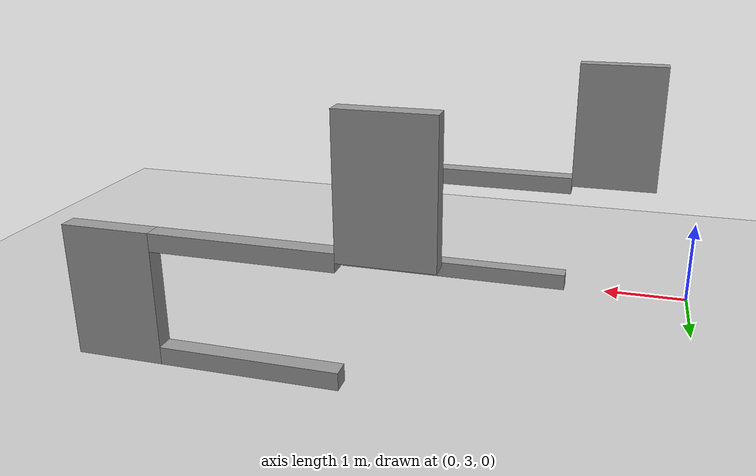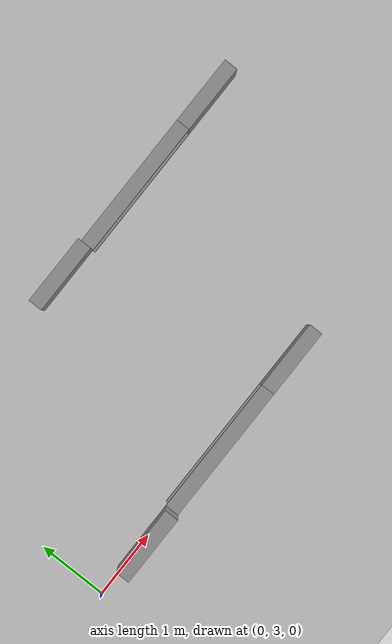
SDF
<sdf version="1.6">
 <world name="default">
  <light name="sun" type="directional">
   <pose>0 0 10 0 -0 0</pose>
   <diffuse>0.8 0.8 0.8 1</diffuse>
   <specular>0.1 0.1 0.1 1</specular>
   <attenuation>
    <range>1000</range>
    <constant>0.9</constant>
    <linear>0.01</linear>
    <quadratic>0.001</quadratic>
   </attenuation>
   <direction>-0.5 0.5 -1</direction>
  </light>
  <model name="ground_plane">
   <static>1</static>
   <link name="link">
    <collision name="collision">
     <geometry><plane><normal>0 0 1</normal><size>100 100</size></plane></geometry>
     <surface><friction><ode><mu>100</mu><mu2>50</mu2></ode></friction></surface>
    </collision>
    <visual name="visual">
     <cast_shadows>0</cast_shadows>
     <geometry><plane><normal>0 0 1</normal><size>100 100</size></plane></geometry>
     <material>
      <script><uri>file://media/materials/scripts/gazebo.material</uri><name>Gazebo/Grey</name></script>
     </material>
    </visual>
   </link>
  </model>
  <gravity>0 0 -9.8</gravity>
  <magnetic_field>6e-06 2.3e-05 -4.2e-05</magnetic_field>
  <atmosphere type="adiabatic"/>
  <physics name="default_physics" default="0" type="ode">
   <max_step_size>0.001</max_step_size>
   <real_time_factor>1</real_time_factor>
   <real_time_update_rate>1000</real_time_update_rate>
  </physics>
  <scene><ambient>0.4 0.4 0.4 1</ambient><background>0.7 0.7 0.7 1</background><shadows>1</shadows></scene>
  <spherical_coordinates>
   <surface_model>EARTH_WGS84</surface_model>
   <latitude_deg>0</latitude_deg>
   <longitude_deg>0</longitude_deg>
   <elevation>0</elevation>
   <heading_deg>0</heading_deg>
  </spherical_coordinates>
  <model name="wall1_1*1.5_1">
   <link name="link">
    <pose>0 0 1.4 0 -0 0</pose>
    <inertial>
     <mass>1</mass>
     <inertia><ixx>1</ixx><ixy>0</ixy><ixz>0</ixz><iyy>1</iyy><iyz>0</iyz><izz>1</izz></inertia>
    </inertial>
    <visual name="visual">
     <cast_shadows>0</cast_shadows>
     <geometry><box><size>1 0.2 1.5</size></box></geometry>
     <material>
      <script>
       <uri>model://grey_wall/materials/scripts</uri>
       <uri>model://grey_wall/materials/textures</uri>
       <name>vrc/grey_wall</name>
      </script>
      <ambient>1 1 1 1</ambient>
      <diffuse>1 1 1 1</diffuse>
      <specular>0 0 0 1</specular>
      <emissive>0 0 0 1</emissive>
      <shader type="vertex"><normal_map>__default__</normal_map></shader>
     </material>
    </visual>
    <collision name="collision">
     <geometry><box><size>1.0 0.2 1.5</size></box></geometry>
     <surface>
      <friction>
       <ode><mu>1</mu><mu2>1</mu2><fdir1>0 0 0</fdir1><slip1>0</slip1><slip2>0</slip2></ode>
       <torsional>
        <coefficient>1</coefficient>
        <patch_radius>0</patch_radius>
        <surface_radius>0</surface_radius>
        <use_patch_radius>1</use_patch_radius>
        <ode><slip>0</slip></ode>
       </torsional>
      </friction>
      <bounce><restitution_coefficient>0</restitution_coefficient><threshold>1e+06</threshold></bounce>
      <contact>
       <collide_without_contact>0</collide_without_contact>
       <collide_without_contact_bitmask>1</collide_without_contact_bitmask>
       <collide_bitmask>1</collide_bitmask>
       <ode>
        <soft_cfm>0</soft_cfm>
        <soft_erp>0.2</soft_erp>
        <kp>1e+13</kp>
        <kd>1</kd>
        <max_vel>0.01</max_vel>
        <min_depth>0</min_depth>
       </ode>
       <bullet>
        <split_impulse>1</split_impulse>
        <split_impulse_penetration_threshold>-0.01</split_impulse_penetration_threshold>
        <soft_cfm>0</soft_cfm>
        <soft_erp>0.2</soft_erp>
        <kp>1e+13</kp>
        <kd>1</kd>
       </bullet>
      </contact>
     </surface>
    </collision>
   </link>
   <static>1</static>
   <pose>1.0 3.0 0.75 0 -0 0</pose>
  </model>
  <model name="wall1_1.0*0.2_1">
   <link name="link">
    <inertial>
     <mass>1</mass>
     <inertia><ixx>1</ixx><ixy>0</ixy><ixz>0</ixz><iyy>1</iyy><iyz>0</iyz><izz>1</izz></inertia>
    </inertial>
    <visual name="visual">
     <cast_shadows>0</cast_shadows>
     <geometry><box><size>2.0 0.2 0.2</size></box></geometry>
     <material>
      <script>
       <uri>model://grey_wall/materials/scripts</uri>
       <uri>model://grey_wall/materials/textures</uri>
       <name>vrc/grey_wall</name>
      </script>
      <ambient>1 1 1 1</ambient>
      <diffuse>1 1 1 1</diffuse>
      <specular>0 0 0 1</specular>
      <emissive>0 0 0 1</emissive>
      <shader type="vertex"><normal_map>__default__</normal_map></shader>
     </material>
    </visual>
    <collision name="collision">
     <geometry><box><size>2.0 0.2 0.2</size></box></geometry>
     <surface>
      <friction>
       <ode><mu>1</mu><mu2>1</mu2><fdir1>0 0 0</fdir1><slip1>0</slip1><slip2>0</slip2></ode>
       <torsional>
        <coefficient>1</coefficient>
        <patch_radius>0</patch_radius>
        <surface_radius>0</surface_radius>
        <use_patch_radius>1</use_patch_radius>
        <ode><slip>0</slip></ode>
       </torsional>
      </friction>
      <bounce><restitution_coefficient>0</restitution_coefficient><threshold>1e+06</threshold></bounce>
      <contact>
       <collide_without_contact>0</collide_without_contact>
       <collide_without_contact_bitmask>1</collide_without_contact_bitmask>
       <collide_bitmask>1</collide_bitmask>
       <ode>
        <soft_cfm>0</soft_cfm>
        <soft_erp>0.2</soft_erp>
        <kp>1e+13</kp>
        <kd>1</kd>
        <max_vel>0.01</max_vel>
        <min_depth>0</min_depth>
       </ode>
       <bullet>
        <split_impulse>1</split_impulse>
        <split_impulse_penetration_threshold>-0.01</split_impulse_penetration_threshold>
        <soft_cfm>0</soft_cfm>
        <soft_erp>0.2</soft_erp>
        <kp>1e+13</kp>
        <kd>1</kd>
       </bullet>
      </contact>
     </surface>
    </collision>
   </link>
   <static>1</static>
   <pose>2.5 3.0 0.1 0 -0 0</pose>
  </model>
  <model name="wall1_1.0*0.2_2">
   <link name="link">
    <inertial>
     <mass>1</mass>
     <inertia><ixx>1</ixx><ixy>0</ixy><ixz>0</ixz><iyy>1</iyy><iyz>0</iyz><izz>1</izz></inertia>
    </inertial>
    <visual name="visual">
     <cast_shadows>0</cast_shadows>
     <geometry><box><size>2.0 0.2 0.2</size></box></geometry>
     <material>
      <script>
       <uri>model://grey_wall/materials/scripts</uri>
       <uri>model://grey_wall/materials/textures</uri>
       <name>vrc/grey_wall</name>
      </script>
      <ambient>1 1 1 1</ambient>
      <diffuse>1 1 1 1</diffuse>
      <specular>0 0 0 1</specular>
      <emissive>0 0 0 1</emissive>
      <shader type="vertex"><normal_map>__default__</normal_map></shader>
     </material>
    </visual>
    <collision name="collision">
     <geometry><box><size>2.0 0.2 0.2</size></box></geometry>
     <surface>
      <friction>
       <ode><mu>1</mu><mu2>1</mu2><fdir1>0 0 0</fdir1><slip1>0</slip1><slip2>0</slip2></ode>
       <torsional>
        <coefficient>1</coefficient>
        <patch_radius>0</patch_radius>
        <surface_radius>0</surface_radius>
        <use_patch_radius>1</use_patch_radius>
        <ode><slip>0</slip></ode>
       </torsional>
      </friction>
      <bounce><restitution_coefficient>0</restitution_coefficient><threshold>1e+06</threshold></bounce>
      <contact>
       <collide_without_contact>0</collide_without_contact>
       <collide_without_contact_bitmask>1</collide_without_contact_bitmask>
       <collide_bitmask>1</collide_bitmask>
       <ode>
        <soft_cfm>0</soft_cfm>
        <soft_erp>0.2</soft_erp>
        <kp>1e+13</kp>
        <kd>1</kd>
        <max_vel>0.01</max_vel>
        <min_depth>0</min_depth>
       </ode>
       <bullet>
        <split_impulse>1</split_impulse>
        <split_impulse_penetration_threshold>-0.01</split_impulse_penetration_threshold>
        <soft_cfm>0</soft_cfm>
        <soft_erp>0.2</soft_erp>
        <kp>1e+13</kp>
        <kd>1</kd>
       </bullet>
      </contact>
     </surface>
    </collision>
   </link>
   <static>1</static>
   <pose>2.5 3.0 1.4 0 -0 0</pose>
  </model>
  <model name="wall1_1*1.5_2">
   <link name="link">
    <inertial>
     <mass>1</mass>
     <inertia><ixx>1</ixx><ixy>0</ixy><ixz>0</ixz><iyy>1</iyy><iyz>0</iyz><izz>1</izz></inertia>
    </inertial>
    <visual name="visual">
     <cast_shadows>0</cast_shadows>
     <geometry><box><size>1 0.2 1.5</size></box></geometry>
     <material>
      <script>
       <uri>model://grey_wall/materials/scripts</uri>
       <uri>model://grey_wall/materials/textures</uri>
       <name>vrc/grey_wall</name>
      </script>
      <ambient>1 1 1 1</ambient>
      <diffuse>1 1 1 1</diffuse>
      <specular>0 0 0 1</specular>
      <emissive>0 0 0 1</emissive>
      <shader type="vertex"><normal_map>__default__</normal_map></shader>
     </material>
    </visual>
    <collision name="collision">
     <geometry><box><size>1.0 0.2 1.5</size></box></geometry>
     <surface>
      <friction>
       <ode><mu>1</mu><mu2>1</mu2><fdir1>0 0 0</fdir1><slip1>0</slip1><slip2>0</slip2></ode>
       <torsional>
        <coefficient>1</coefficient>
        <patch_radius>0</patch_radius>
        <surface_radius>0</surface_radius>
        <use_patch_radius>1</use_patch_radius>
        <ode><slip>0</slip></ode>
       </torsional>
      </friction>
      <bounce><restitution_coefficient>0</restitution_coefficient><threshold>1e+06</threshold></bounce>
      <contact>
       <collide_without_contact>0</collide_without_contact>
       <collide_without_contact_bitmask>1</collide_without_contact_bitmask>
       <collide_bitmask>1</collide_bitmask>
       <ode>
        <soft_cfm>0</soft_cfm>
        <soft_erp>0.2</soft_erp>
        <kp>1e+13</kp>
        <kd>1</kd>
        <max_vel>0.01</max_vel>
        <min_depth>0</min_depth>
       </ode>
       <bullet>
        <split_impulse>1</split_impulse>
        <split_impulse_penetration_threshold>-0.01</split_impulse_penetration_threshold>
        <soft_cfm>0</soft_cfm>
        <soft_erp>0.2</soft_erp>
        <kp>1e+13</kp>
        <kd>1</kd>
       </bullet>
      </contact>
     </surface>
    </collision>
   </link>
   <static>1</static>
   <pose>4.0 3.0 0.75 0 -0 0</pose>
  </model>
  <model name="wall2_1*1.5_1">
   <link name="link">
    <pose>0 0 1.4 0 -0 0</pose>
    <inertial>
     <mass>1</mass>
     <inertia><ixx>1</ixx><ixy>0</ixy><ixz>0</ixz><iyy>1</iyy><iyz>0</iyz><izz>1</izz></inertia>
    </inertial>
    <visual name="visual">
     <cast_shadows>0</cast_shadows>
     <geometry><box><size>1 0.2 1.5</size></box></geometry>
     <material>
      <script>
       <uri>model://grey_wall/materials/scripts</uri>
       <uri>model://grey_wall/materials/textures</uri>
       <name>vrc/grey_wall</name>
      </script>
      <ambient>1 1 1 1</ambient>
      <diffuse>1 1 1 1</diffuse>
      <specular>0 0 0 1</specular>
      <emissive>0 0 0 1</emissive>
      <shader type="vertex"><normal_map>__default__</normal_map></shader>
     </material>
    </visual>
    <collision name="collision">
     <geometry><box><size>1.0 0.2 1.5</size></box></geometry>
     <surface>
      <friction>
       <ode><mu>1</mu><mu2>1</mu2><fdir1>0 0 0</fdir1><slip1>0</slip1><slip2>0</slip2></ode>
       <torsional>
        <coefficient>1</coefficient>
        <patch_radius>0</patch_radius>
        <surface_radius>0</surface_radius>
        <use_patch_radius>1</use_patch_radius>
        <ode><slip>0</slip></ode>
       </torsional>
      </friction>
      <bounce><restitution_coefficient>0</restitution_coefficient><threshold>1e+06</threshold></bounce>
      <contact>
       <collide_without_contact>0</collide_without_contact>
       <collide_without_contact_bitmask>1</collide_without_contact_bitmask>
       <collide_bitmask>1</collide_bitmask>
       <ode>
        <soft_cfm>0</soft_cfm>
        <soft_erp>0.2</soft_erp>
        <kp>1e+13</kp>
        <kd>1</kd>
        <max_vel>0.01</max_vel>
        <min_depth>0</min_depth>
       </ode>
       <bullet>
        <split_impulse>1</split_impulse>
        <split_impulse_penetration_threshold>-0.01</split_impulse_penetration_threshold>
        <soft_cfm>0</soft_cfm>
        <soft_erp>0.2</soft_erp>
        <kp>1e+13</kp>
        <kd>1</kd>
       </bullet>
      </contact>
     </surface>
    </collision>
   </link>
   <static>1</static>
   <pose>3.0 6.0 0.75 0 -0 0</pose>
  </model>
  <model name="wall2_1.0*0.2_1">
   <link name="link">
    <inertial>
     <mass>1</mass>
     <inertia><ixx>1</ixx><ixy>0</ixy><ixz>0</ixz><iyy>1</iyy><iyz>0</iyz><izz>1</izz></inertia>
    </inertial>
    <visual name="visual">
     <cast_shadows>0</cast_shadows>
     <geometry><box><size>2.0 0.2 0.2</size></box></geometry>
     <material>
      <script>
       <uri>model://grey_wall/materials/scripts</uri>
       <uri>model://grey_wall/materials/textures</uri>
       <name>vrc/grey_wall</name>
      </script>
      <ambient>1 1 1 1</ambient>
      <diffuse>1 1 1 1</diffuse>
      <specular>0 0 0 1</specular>
      <emissive>0 0 0 1</emissive>
      <shader type="vertex"><normal_map>__default__</normal_map></shader>
     </material>
    </visual>
    <collision name="collision">
     <geometry><box><size>2.0 0.2 0.2</size></box></geometry>
     <surface>
      <friction>
       <ode><mu>1</mu><mu2>1</mu2><fdir1>0 0 0</fdir1><slip1>0</slip1><slip2>0</slip2></ode>
       <torsional>
        <coefficient>1</coefficient>
        <patch_radius>0</patch_radius>
        <surface_radius>0</surface_radius>
        <use_patch_radius>1</use_patch_radius>
        <ode><slip>0</slip></ode>
       </torsional>
      </friction>
      <bounce><restitution_coefficient>0</restitution_coefficient><threshold>1e+06</threshold></bounce>
      <contact>
       <collide_without_contact>0</collide_without_contact>
       <collide_without_contact_bitmask>1</collide_without_contact_bitmask>
       <collide_bitmask>1</collide_bitmask>
       <ode>
        <soft_cfm>0</soft_cfm>
        <soft_erp>0.2</soft_erp>
        <kp>1e+13</kp>
        <kd>1</kd>
        <max_vel>0.01</max_vel>
        <min_depth>0</min_depth>
       </ode>
       <bullet>
        <split_impulse>1</split_impulse>
        <split_impulse_penetration_threshold>-0.01</split_impulse_penetration_threshold>
        <soft_cfm>0</soft_cfm>
        <soft_erp>0.2</soft_erp>
        <kp>1e+13</kp>
        <kd>1</kd>
       </bullet>
      </contact>
     </surface>
    </collision>
   </link>
   <static>1</static>
   <pose>4.5 6.0 0.1 0 -0 0</pose>
  </model>
  <model name="wall2_1.0*0.2_2">
   <link name="link">
    <inertial>
     <mass>1</mass>
     <inertia><ixx>1</ixx><ixy>0</ixy><ixz>0</ixz><iyy>1</iyy><iyz>0</iyz><izz>1</izz></inertia>
    </inertial>
    <visual name="visual">
     <cast_shadows>0</cast_shadows>
     <geometry><box><size>2.0 0.2 0.2</size></box></geometry>
     <material>
      <script>
       <uri>model://grey_wall/materials/scripts</uri>
       <uri>model://grey_wall/materials/textures</uri>
       <name>vrc/grey_wall</name>
      </script>
      <ambient>1 1 1 1</ambient>
      <diffuse>1 1 1 1</diffuse>
      <specular>0 0 0 1</specular>
      <emissive>0 0 0 1</emissive>
      <shader type="vertex"><normal_map>__default__</normal_map></shader>
     </material>
    </visual>
    <collision name="collision">
     <geometry><box><size>2.0 0.2 0.2</size></box></geometry>
     <surface>
      <friction>
       <ode><mu>1</mu><mu2>1</mu2><fdir1>0 0 0</fdir1><slip1>0</slip1><slip2>0</slip2></ode>
       <torsional>
        <coefficient>1</coefficient>
        <patch_radius>0</patch_radius>
        <surface_radius>0</surface_radius>
        <use_patch_radius>1</use_patch_radius>
        <ode><slip>0</slip></ode>
       </torsional>
      </friction>
      <bounce><restitution_coefficient>0</restitution_coefficient><threshold>1e+06</threshold></bounce>
      <contact>
       <collide_without_contact>0</collide_without_contact>
       <collide_without_contact_bitmask>1</collide_without_contact_bitmask>
       <collide_bitmask>1</collide_bitmask>
       <ode>
        <soft_cfm>0</soft_cfm>
        <soft_erp>0.2</soft_erp>
        <kp>1e+13</kp>
        <kd>1</kd>
        <max_vel>0.01</max_vel>
        <min_depth>0</min_depth>
       </ode>
       <bullet>
        <split_impulse>1</split_impulse>
        <split_impulse_penetration_threshold>-0.01</split_impulse_penetration_threshold>
        <soft_cfm>0</soft_cfm>
        <soft_erp>0.2</soft_erp>
        <kp>1e+13</kp>
        <kd>1</kd>
       </bullet>
      </contact>
     </surface>
    </collision>
   </link>
   <static>1</static>
   <pose>4.5 6.0 1.4 0 -0 0</pose>
  </model>
  <model name="wall2_1*1.5_2">
   <link name="link">
    <inertial>
     <mass>1</mass>
     <inertia><ixx>1</ixx><ixy>0</ixy><ixz>0</ixz><iyy>1</iyy><iyz>0</iyz><izz>1</izz></inertia>
    </inertial>
    <visual name="visual">
     <cast_shadows>0</cast_shadows>
     <geometry><box><size>1 0.2 1.5</size></box></geometry>
     <material>
      <script>
       <uri>model://grey_wall/materials/scripts</uri>
       <uri>model://grey_wall/materials/textures</uri>
       <name>vrc/grey_wall</name>
      </script>
      <ambient>1 1 1 1</ambient>
      <diffuse>1 1 1 1</diffuse>
      <specular>0 0 0 1</specular>
      <emissive>0 0 0 1</emissive>
      <shader type="vertex"><normal_map>__default__</normal_map></shader>
     </material>
    </visual>
    <collision name="collision">
     <geometry><box><size>1.0 0.2 1.5</size></box></geometry>
     <surface>
      <friction>
       <ode><mu>1</mu><mu2>1</mu2><fdir1>0 0 0</fdir1><slip1>0</slip1><slip2>0</slip2></ode>
       <torsional>
        <coefficient>1</coefficient>
        <patch_radius>0</patch_radius>
        <surface_radius>0</surface_radius>
        <use_patch_radius>1</use_patch_radius>
        <ode><slip>0</slip></ode>
       </torsional>
      </friction>
      <bounce><restitution_coefficient>0</restitution_coefficient><threshold>1e+06</threshold></bounce>
      <contact>
       <collide_without_contact>0</collide_without_contact>
       <collide_without_contact_bitmask>1</collide_without_contact_bitmask>
       <collide_bitmask>1</collide_bitmask>
       <ode>
        <soft_cfm>0</soft_cfm>
        <soft_erp>0.2</soft_erp>
        <kp>1e+13</kp>
        <kd>1</kd>
        <max_vel>0.01</max_vel>
        <min_depth>0</min_depth>
       </ode>
       <bullet>
        <split_impulse>1</split_impulse>
        <split_impulse_penetration_threshold>-0.01</split_impulse_penetration_threshold>
        <soft_cfm>0</soft_cfm>
        <soft_erp>0.2</soft_erp>
        <kp>1e+13</kp>
        <kd>1</kd>
       </bullet>
      </contact>
     </surface>
    </collision>
   </link>
   <static>1</static>
   <pose>6.0 6.0 0.75 0 -0 0</pose>
  </model>
 </world>
</sdf>
